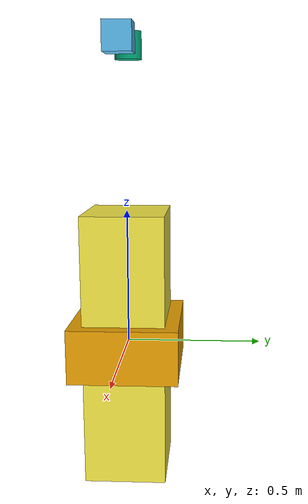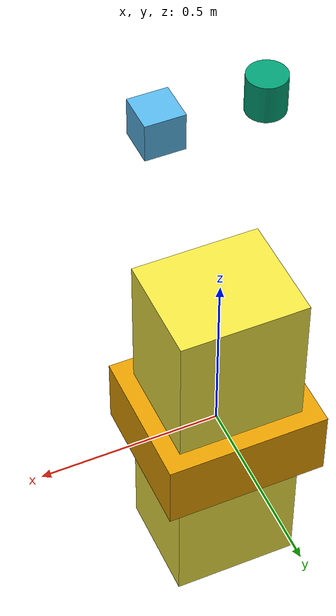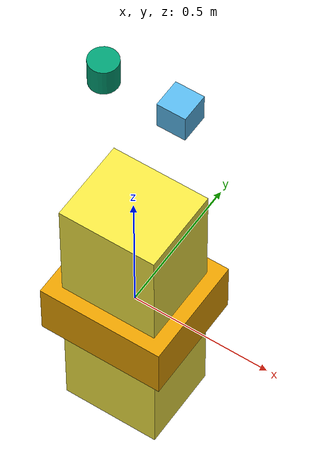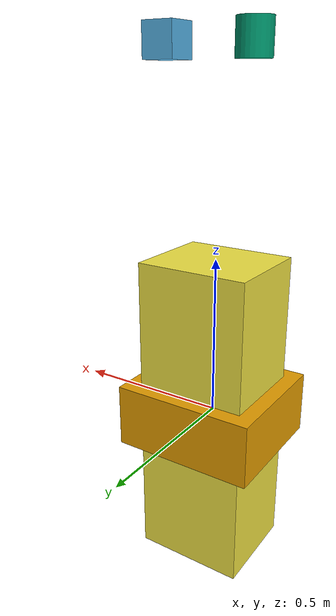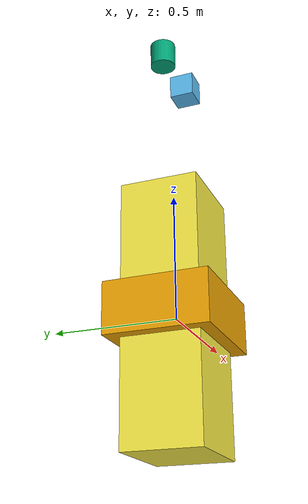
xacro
<?xml version="1.0"?>
<robot name="navigation_robot">

  <!-- 定义base_link（底盘） -->
  <link name="base_link">
    <visual>
      <origin xyz="0 0 0" rpy="0 0 0"/>
      <geometry>
        <box size="0.45 0.4 0.2"/> <!-- 长0.45m，宽0.4m，高度0.1m -->
      </geometry>
    </visual>
    <collision>
      <origin xyz="0 0 0" rpy="0 0 0"/>
      <geometry>
        <box size="0.45 0.4 0.2"/>
      </geometry>
    </collision>
  </link>

  <!-- imu_link与base_link的固定连接 -->
  <joint name="base_to_imu" type="fixed">
    <parent link="base_link"/>
    <child link="imu_link"/>
    <origin xyz="0.17 0 1.1" rpy="0 0 0"/> <!-- 符合用户指定的xyz坐标 [[1]][[3]] -->
  </joint>
  <link name="imu_link">
    <visual>
      <origin xyz="0 0 0" rpy="0 0 0"/>
      <geometry>
        <box size="0.1 0.1 0.1"/> <!-- IMU传感器尺寸示例 -->
      </geometry>
    </visual>
  </link>

  <!-- 雷达与imu_link的固定连接 -->
  <joint name="imu_to_laser" type="fixed">
    <parent link="imu_link"/>
    <child link="laser_link"/>
    <origin xyz="-0.27 0 0" rpy="0 0 0"/> <!-- x轴负方向偏移0.27m [[1]][[6]] -->
  </joint>
  <link name="laser_link">
    <visual>
      <origin xyz="0 0 0" rpy="0 0 0"/>
      <geometry>
        <cylinder radius="0.05" length="0.1"/> <!-- 雷达传感器示例 -->
      </geometry>
    </visual>
  </link>

  <!-- 定义body_link（车身主体） -->
  <joint name="base_to_body" type="fixed">
    <parent link="base_link"/>
    <child link="body_link"/>
    <origin xyz="0 0 0" rpy="0 0 0"/> <!-- 在base_link上方0.1m [[3]][[5]] -->
  </joint>

  <link name="body_link">
    <visual>
      <origin xyz="0 0 0" rpy="0 0 0"/>
      <geometry>
        <box size="0.35 0.3 1.0"/> <!-- 长0.35m，宽0.3m，高度0.2m -->
      </geometry>
    </visual>
    <collision>
      <origin xyz="0 0 0" rpy="0 0 0"/>
      <geometry>
        <box size="0.35 0.3 1.0"/>
      </geometry>
    </collision>
  </link>

</robot>
